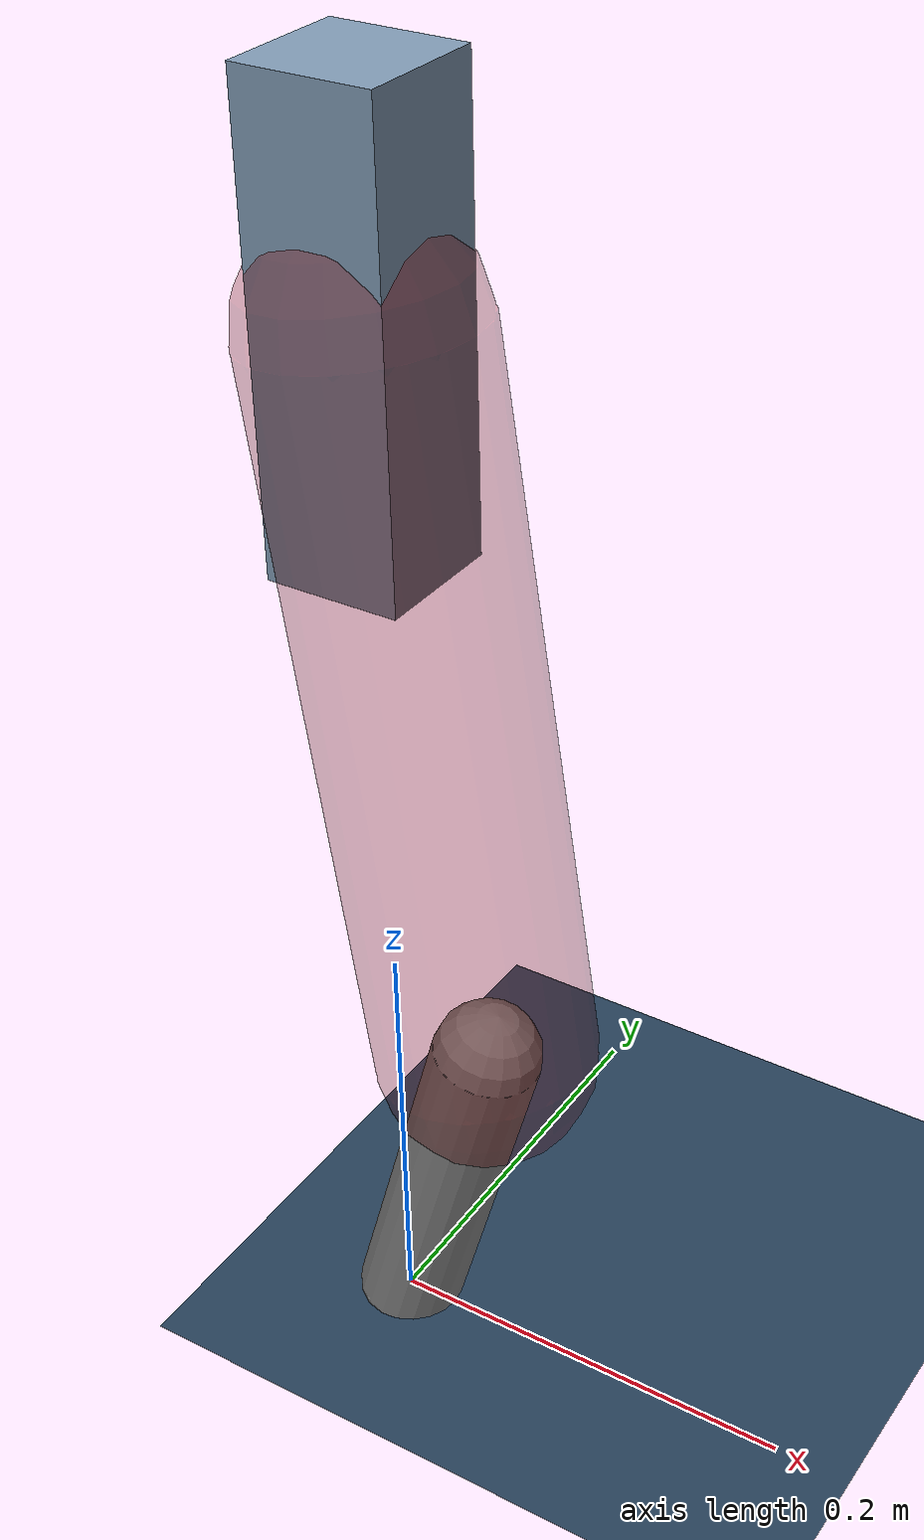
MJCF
<mujoco model="Hopper2D">
	<compiler inertiafromgeom="true" angle="radian" />
	<option timestep="0.001" integrator="implicit" cone="elliptic" solver="Newton" tolerance="1e-10" />

	<default>
		<geom contype="1" conaffinity="1" condim="3" friction="2 0.005 0.0001" solref="0.005 1" />
		<joint limited="true" damping="0.1" />
	</default>

	<asset>
		<texture name="skybox" type="skybox" builtin="gradient" rgb1=".4 .6 .8" rgb2="0 0 0" width="800" height="800" />
		<texture name="grid" type="2d" builtin="checker" rgb1=".1 .2 .3" rgb2=".2 .3 .4" width="300" height="300" mark="edge" markrgb=".2 .3 .4" />
		<material name="ground" texture="grid" texrepeat="1 1" texuniform="true" reflectance="0.1" />
		<material name="leg" rgba="0.5 0.6 0.7 1" />
	</asset>

	<worldbody>

		<geom name="floor" type="plane" size="5 5 0.25" material="ground" />

		<light directional="false" diffuse="0.8 0.8 0.8" specular="0.3 0.3 0.3" pos="0 0 2" dir="0 0 -1" />
		<light mode="targetbodycom" target="base" directional="false" diffuse="0.8 0.8 0.8" specular="0.3 0.3 0.3" pos="0 0 2" dir="0 0 -1" />

		<camera name="fixed" pos="0 -2 1" xyaxes="1 0 0 0 0 1" />
		<camera name="tracking" mode="trackcom" pos="0 -3 1" />

		<body name="root" pos="0 0 0.49961592543898603">
			<joint name="slide_x" type="slide" axis="1 0 0" range="-100 100" />
			<joint name="slide_z" type="slide" axis="0 0 1" range="0 10" />

			<body name="base" pos="0 0 0">
				<geom name="torso" type="box" size="0.03 0.03 0.1" mass="4.145" material="leg" />

				<body name="link1" pos="0 0 0" euler="0 1.427656979647845 0">
					<joint type="hinge" axis="0 -1 0" pos="0 0 0" name="hinge1" limited="true" range="-3.14 3.14" stiffness="0" damping="0.1" />
					<geom name="thigh" type="capsule" fromto="0 0 0 0.3339715000613835 0 0" size="0.05" rgba="0.5 0 0 0.3" mass="1.0818230501657355" />

					<body name="link2" pos="0.3339715000613835 0 0" euler="0 0.4178180304172303 0">
						<joint type="hinge" axis="0 -1 0" pos="0 0 0" name="hinge2" limited="true" range="-3.14 3.14" stiffness="0" damping="0.1" />
						<geom name="shank" type="capsule" fromto="0 0 0 0.17564442537760255 0 0" size="0.025" mass="0.38017998283984233" />

					</body>
				</body>
			</body>
		</body>
	</worldbody>

	<actuator>
		<motor name="torque1" joint="hinge1" ctrlrange="-319.89363464857865 319.89363464857865" ctrllimited="true" gear="1" />
		<motor name="torque2" joint="hinge2" ctrlrange="-54.65987685745611 54.65987685745611" ctrllimited="true" gear="1" />
	</actuator>
</mujoco>
